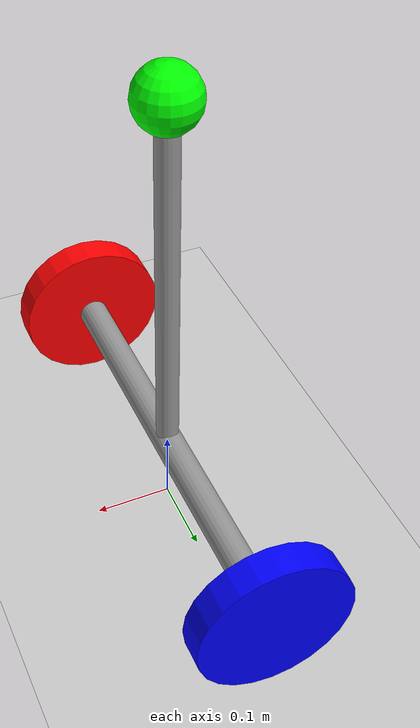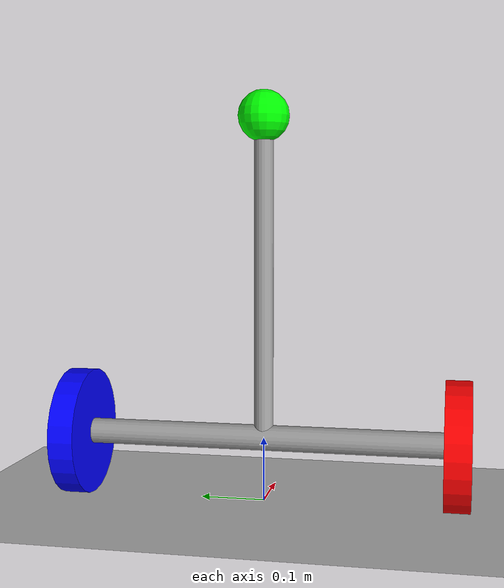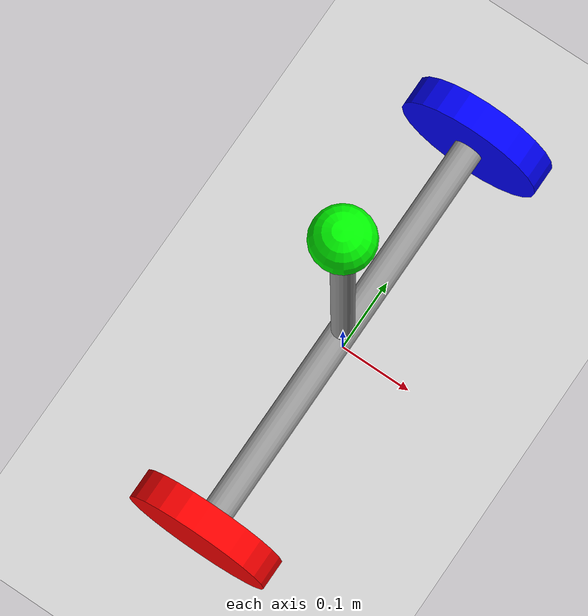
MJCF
<mujoco model="hoverboard">
    <option gravity="0 0 -9.81" timestep="0.002" integrator="RK4"/>

    <default>
        <joint damping="0.01"/>
        <geom friction="1.0 0.005 0.0001"/>
    </default>

    <worldbody>
        <geom name="floor" type="plane" size="5 5 0.1" rgba="0.8 0.8 0.8 1"/>

        <body name="chassis" pos="0 0 0.1">
            <joint type="free"/>
            <inertial pos="0 0 0" mass="1e-6" diaginertia="1e-8 1e-8 1e-8"/>
            <geom name="chassis_geom" type="cylinder" size="0.02 0.3" quat="0.707 0.707 0 0" rgba="0.6 0.6 0.6 1"/>

            <body name="left_wheel" pos="0 0.3 0">
                <joint name="left_hinge" type="hinge" axis="0 1 0" damping="0.001"/>
                <inertial pos="0 0 0" mass="5.0" diaginertia="0.012500000000000002 0.025000000000000005 0.012500000000000002"/>
                <geom name="left_wheel_geom" type="cylinder" size="0.1 0.02" quat="0.707 0.707 0 0" rgba="0 0 1 1"/>
            </body>

            <body name="right_wheel" pos="0 -0.3 0">
                <joint name="right_hinge" type="hinge" axis="0 1 0" damping="0.001"/>
                <inertial pos="0 0 0" mass="5.0" diaginertia="0.012500000000000002 0.025000000000000005 0.012500000000000002"/>
                <geom name="right_wheel_geom" type="cylinder" size="0.1 0.02" quat="0.707 0.707 0 0" rgba="1 0 0 1"/>
            </body>

            <body name="pendulum_rod" pos="0 0 0">
                <joint name="pend_hinge" type="hinge" axis="0 1 0" damping="0.0005"/>
                <inertial pos="0 0 0.25" mass="1e-6" diaginertia="1e-8 1e-8 1e-8"/>
                <geom name="rod_geom" type="capsule" fromto="0 0 0 0 0 0.5" size="0.015" rgba="0.6 0.6 0.6 1"/>

                <body name="pendulum_mass" pos="0 0 0.5">
                    <inertial pos="0 0 0" mass="70.0" diaginertia="0.001 0.001 0.001"/>
                    <geom name="mass_geom" type="sphere" size="0.04" rgba="0 1 0 1"/>
                </body>
            </body>
        </body>
    </worldbody>

    <actuator>
        <motor name="left_motor" joint="left_hinge" gear="1" ctrlrange="-20.0 20.0"/>
        <motor name="right_motor" joint="right_hinge" gear="1" ctrlrange="-20.0 20.0"/>
    </actuator>

    </mujoco>
